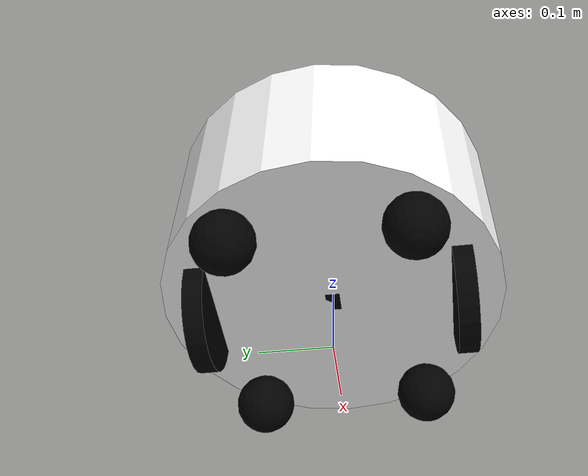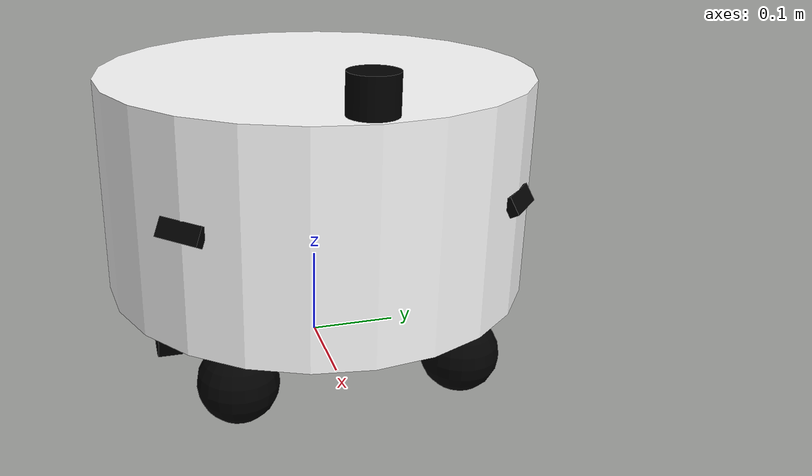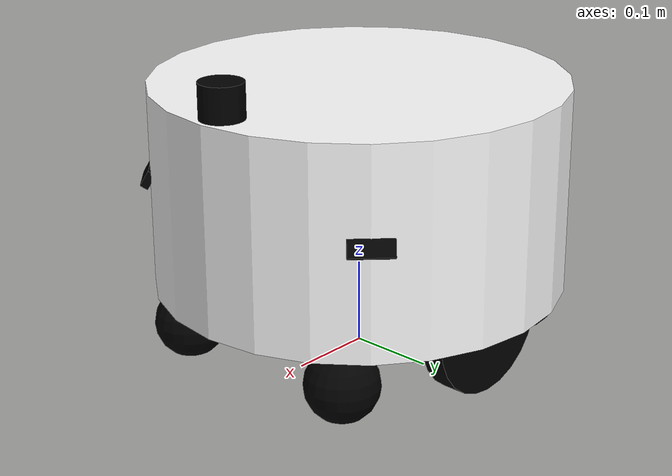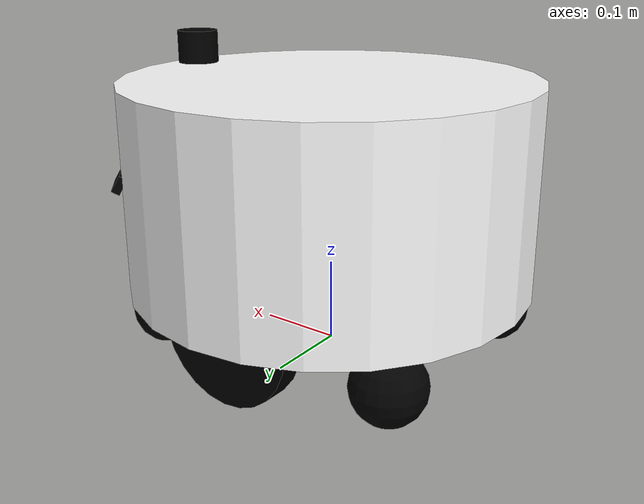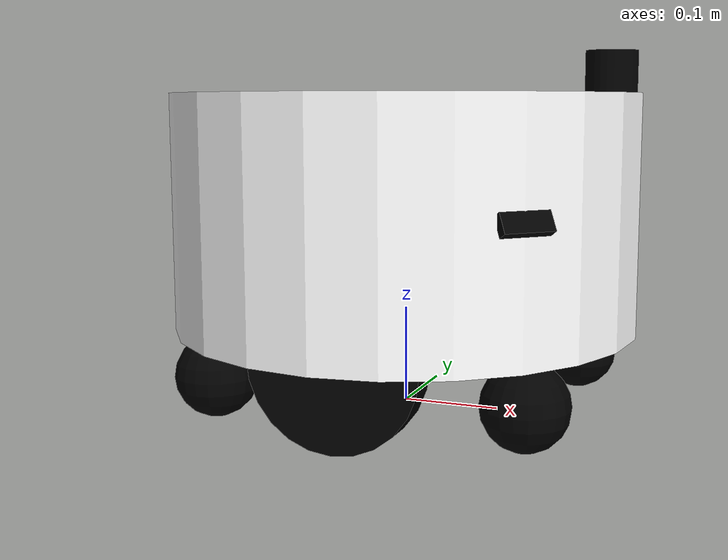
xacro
<?xml version="1.0"?>
<robot name="robot" xmlns:xacro="http://www.ros.org/wiki/xacro">

  <xacro:include filename="$(find my_robot_description)/urdf/common_properties.xacro"/>
  <xacro:include filename="$(find my_robot_description)/urdf/mobile_base.xacro"/>
  <xacro:include filename="$(find my_robot_description)/urdf/lidar.xacro"/>
  <xacro:include filename="$(find my_robot_description)/urdf/mobile_base_gazebo.xacro"/>
  <xacro:include filename="$(find my_robot_description)/urdf/depth_camera.xacro"/>

</robot>

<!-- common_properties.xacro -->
<robot xmlns:xacro="http://www.ros.org/wiki/xacro">

    <material name="black">
        <color rgba="0.0 0.0 0.0 1.0"/>
    </material>

    <material name="red">
        <color rgba="1.0 0.0 0.0 1.0"/>
    </material>

    <material name="grey_blue">
        <color rgba="0.4 0.4 0.6 1.0"/>
    </material>

    <material name="white">
        <color rgba="1.0 1.0 1.0 1.0"/>
    </material>

</robot>

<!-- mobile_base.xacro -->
<robot xmlns:xacro="http://www.ros.org/wiki/xacro">

  <xacro:property name="M_PI" value="3.1415926535897931" />

  <link name="base_footprint"/>

  <joint name="base_joint" type="fixed">
    <origin xyz="0 0 0.0648" rpy="0 0 0" />
    <parent link="base_footprint"/>
    <child link="base_link" />
  </joint>

  <link name="base_link">
    <visual>
      <geometry>
        <cylinder length="0.24" radius="0.24" />
      </geometry>
      <origin xyz="0 0 0.14" rpy="0 0 0"/>
      <material name="white"/>
    </visual>
    <collision name="base">
      <geometry>
        <cylinder length="0.24" radius="0.24"/>
      </geometry>
      <origin xyz="0.0 0 0.14" rpy="0 0 0"/>
    </collision>
    <inertial>
      <origin xyz="0.01 0 0"/>
      <mass value="2.4"/>
      <inertia ixx="0.019995" ixy="0.0" ixz="0.0"
               iyy="0.019995" iyz="0.0"
               izz="0.03675" />
    </inertial>
  </link>

  <joint name="wheel_left_joint" type="continuous">
    <parent link="base_link"/>
    <child link="wheel_left_link"/>
    <origin xyz="0.00 ${0.36/2} 0.02" rpy="${-M_PI/2} 0 0"/>
    <axis xyz="0 0 1"/>
  </joint>

  <link name="wheel_left_link">
    <visual>
      <geometry>
        <cylinder length="0.0276" radius="0.0848" />
      </geometry>
      <origin xyz="0 0 0" rpy="0 0 0"/>
      <material name="black"/>
    </visual>
    <collision>
      <geometry>
        <cylinder length="0.0276" radius="0.0848"/>
      </geometry>
      <origin rpy="0 0 0" xyz="0 0 0"/>
    </collision>
    <inertial>
      <mass value="0.01" />
      <origin xyz="0 0 0" />
      <inertia ixx="0.001" ixy="0.0" ixz="0.0"
               iyy="0.001" iyz="0.0"
               izz="0.001" />
    </inertial>
  </link>

  <joint name="wheel_right_joint" type="continuous">
    <parent link="base_link"/>
    <child link="wheel_right_link"/>
    <origin xyz="0.00 -${0.36/2} 0.02" rpy="${-M_PI/2} 0 0"/>
    <axis xyz="0 0 1"/>
  </joint>

  <link name="wheel_right_link">
    <visual>
      <geometry>
        <cylinder length="0.0276" radius="0.0848" />
      </geometry>
      <origin xyz="0 0 0" rpy="0 0 0"/>
      <material name="black"/>
    </visual>
    <collision>
      <geometry>
        <cylinder length="0.0276" radius="0.0848"/>
      </geometry>
      <origin rpy="0 0 0" xyz="0 0 0"/>
    </collision>
    <inertial>
      <mass value="0.01" />
      <origin xyz="0 0 0" />
      <inertia ixx="0.001" ixy="0.0" ixz="0.0"
               iyy="0.001" iyz="0.0"
               izz="0.001" />
    </inertial>
  </link>

<joint name="caster_front_left_joint" type="fixed">
    <parent link="base_link"/>
    <child link="caster_front_left_link"/>
    <origin xyz="0.16 0.12 -0.0224" rpy="0 0 0"/>
  </joint>

  <link name="caster_front_left_link">
    <visual>
      <geometry>
        <sphere radius="0.0424"/>
      </geometry>
      <material name="black"/>
    </visual>
    <collision>
      <geometry>
        <sphere radius="0.0424"/>
      </geometry>
    </collision>
    <inertial>
      <mass value="0.01" />
      <inertia ixx="0.000007" ixy="0.0" ixz="0.0" iyy="0.000007" iyz="0.0" izz="0.000007" />
    </inertial>
  </link>

  <joint name="caster_front_right_joint" type="fixed">
    <parent link="base_link"/>
    <child link="caster_front_right_link"/>
    <origin xyz="0.16 -0.12 -0.0224" rpy="0 0 0"/>
  </joint>

  <link name="caster_front_right_link">
    <visual>
      <geometry>
        <sphere radius="0.0424"/>
      </geometry>
      <material name="black"/>
    </visual>
    <collision>
      <geometry>
        <sphere radius="0.0424"/>
      </geometry>
    </collision>
    <inertial>
      <mass value="0.01" />
      <inertia ixx="0.000007" ixy="0.0" ixz="0.0" iyy="0.000007" iyz="0.0" izz="0.000007" />
    </inertial>
  </link>

  <joint name="caster_back_left_joint" type="fixed">
    <parent link="base_link"/>
    <child link="caster_back_left_link"/>
    <origin xyz="-0.16 0.12 -0.0224" rpy="0 0 0"/>
  </joint>

  <link name="caster_back_left_link">
    <visual>
      <geometry>
        <sphere radius="0.0424"/>
      </geometry>
      <material name="black"/>
    </visual>
    <collision>
      <geometry>
        <sphere radius="0.0424"/>
      </geometry>
    </collision>
    <inertial>
      <mass value="0.01" />
      <inertia ixx="0.000007" ixy="0.0" ixz="0.0" iyy="0.000007" iyz="0.0" izz="0.000007" />
    </inertial>
  </link>

  <joint name="caster_back_right_joint" type="fixed">
    <parent link="base_link"/>
    <child link="caster_back_right_link"/>
    <origin xyz="-0.16 -0.12 -0.0224" rpy="0 0 0"/>
  </joint>

  <link name="caster_back_right_link">
    <visual>
      <geometry>
        <sphere radius="0.0424"/>
      </geometry>
      <material name="black"/>
    </visual>
    <collision>
      <geometry>
        <sphere radius="0.0424"/>
      </geometry>
    </collision>
    <inertial>
      <mass value="0.01" />
      <inertia ixx="0.000007" ixy="0.0" ixz="0.0" iyy="0.000007" iyz="0.0" izz="0.000007" />
    </inertial>
  </link>

  <joint name="imu_joint" type="fixed">
    <parent link="base_link"/>
    <child link="imu_link"/>
    <origin xyz="0 0 0.03" rpy="0 0 0"/>
  </joint>

  <link name="imu_link">
    <visual>
      <origin xyz="0 0 0.0" rpy="0 0 0"/>
      <geometry>
        <box size="0.03 0.02 0.02"/>
      </geometry>
      <material name="black"/>
    </visual>
  </link>

  <gazebo reference="wheel_left_link"><mu1>100.0</mu1><mu2>100.0</mu2></gazebo>
  <gazebo reference="wheel_right_link"><mu1>100.0</mu1><mu2>100.0</mu2></gazebo>
  <gazebo reference="caster_front_left_link"><mu1>0.0</mu1><mu2>0.0</mu2></gazebo>
  <gazebo reference="caster_front_right_link"><mu1>0.0</mu1><mu2>0.0</mu2></gazebo>
  <gazebo reference="caster_back_left_link"><mu1>0.0</mu1><mu2>0.0</mu2></gazebo>
  <gazebo reference="caster_back_right_link"><mu1>0.0</mu1><mu2>0.0</mu2></gazebo>
</robot>

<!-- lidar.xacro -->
<robot xmlns:xacro="http://www.ros.org/wiki/xacro">

  <joint name="lidar_joint" type="fixed">
    <parent link="base_link"/>
    <child link="lidar_link"/>
    <origin xyz="0.21 0 0.28" rpy="3.1415926 0 0"/>
  </joint>

  <link name="lidar_link">
    <visual>
      <origin xyz="0 0 0.0" rpy="0 0 0"/>
      <geometry>
        <cylinder length="0.04" radius="0.025"/>
      </geometry>
      <material name="black"/>
    </visual>

    <collision>
      <origin xyz="0 0 0.0" rpy="0 0 0"/>
      <geometry>
        <cylinder length="0.04" radius="0.025"/>
      </geometry>
    </collision>

    <inertial>
      <mass value="0.114" />
      <origin xyz="0 0 0" />
      <inertia ixx="0.001" ixy="0.0" ixz="0.0"
               iyy="0.001" iyz="0.0"
               izz="0.001" />
    </inertial>
  </link>

  <gazebo reference="lidar_link">
    <sensor name="lidar" type="gpu_lidar">
      <pose>0 0 0 0 0 0</pose>
      <update_rate>10</update_rate>
      <gz_frame_id>lidar_link</gz_frame_id>
      <ray>
        <scan>
          <horizontal>
            <samples>720</samples>
            <min_angle>-1.570796</min_angle>
            <max_angle>1.570796</max_angle>
          </horizontal>
        </scan>
        <range>
          <min>0.12</min>
          <max>15.0</max>
        </range>
      </ray>
      <topic>scan</topic>
      <visualize>true</visualize>
    </sensor>
  </gazebo>

</robot>

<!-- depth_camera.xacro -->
<robot xmlns:xacro="http://www.ros.org/wiki/xacro">

  <joint name="camera_left_joint" type="fixed">
    <parent link="base_link"/>
    <child link="camera_left_link"/>
    <origin xyz="0.17 0.17 0.15" rpy="0 -0.5236 0.7854"/>
  </joint>

  <link name="camera_left_link">
    <visual>
      <geometry>
        <box size="0.01 0.05 0.02"/>
      </geometry>
      <material name="black"/>
    </visual>
  </link>

  <joint name="camera_left_optical_joint" type="fixed">
    <parent link="camera_left_link"/>
    <child link="camera_left_link_optical"/>
    <origin xyz="0 0 0" rpy="${-pi/2} 0 ${-pi/2}"/>
  </joint>

  <link name="camera_left_link_optical"/>

  <gazebo reference="camera_left_link">
    <sensor name="camera_left" type="camera">
      <update_rate>10</update_rate>
      <visualize>true</visualize>
      <always_on>true</always_on>
      <topic>camera_left/image_raw</topic>
      <camera>
        <horizontal_fov>1.089</horizontal_fov>
        <image>
          <width>640</width>
          <height>480</height>
          <format>R8G8B8</format>
        </image>
        <clip>
          <near>0.05</near>
          <far>8.0</far>
        </clip>
      </camera>
      <gz_frame_id>camera_left_link_optical</gz_frame_id>
    </sensor>
  </gazebo>

  <joint name="camera_right_joint" type="fixed">
    <parent link="base_link"/>
    <child link="camera_right_link"/>
    <origin xyz="0.17 -0.17 0.15" rpy="0 -0.5236 -0.7854"/>
  </joint>

  <link name="camera_right_link">
    <visual>
      <geometry>
        <box size="0.01 0.05 0.02"/>
      </geometry>
      <material name="black"/>
    </visual>
  </link>

  <joint name="camera_right_optical_joint" type="fixed">
    <parent link="camera_right_link"/>
    <child link="camera_right_link_optical"/>
    <origin xyz="0 0 0" rpy="${-pi/2} 0 ${-pi/2}"/>
  </joint>

  <link name="camera_right_link_optical"/>

  <gazebo reference="camera_right_link">
    <sensor name="camera_right" type="camera">
      <update_rate>10</update_rate>
      <visualize>true</visualize>
      <always_on>true</always_on>
      <topic>camera_right/image_raw</topic>
      <camera>
        <horizontal_fov>1.089</horizontal_fov>
        <image>
          <width>640</width>
          <height>480</height>
          <format>R8G8B8</format>
        </image>
        <clip>
          <near>0.05</near>
          <far>8.0</far>
        </clip>
      </camera>
      <gz_frame_id>camera_right_link_optical</gz_frame_id>
    </sensor>
  </gazebo>

</robot>
